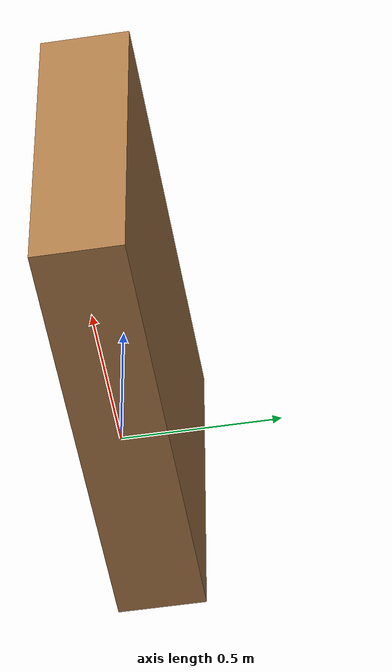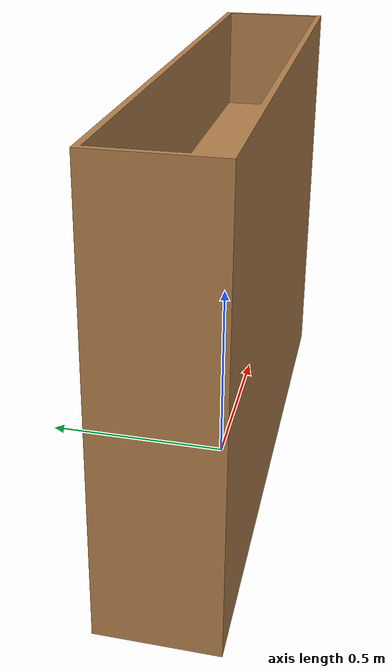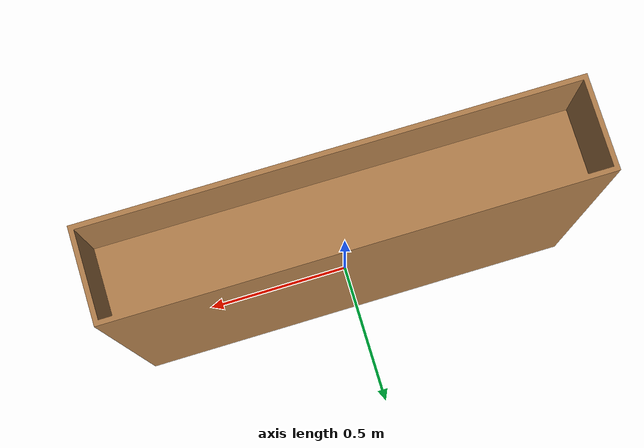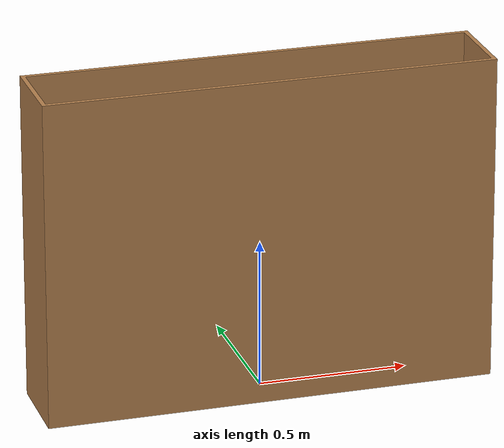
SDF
<sdf version='1.7'>
  <model name='Officedesk_F'>
    <link name='Officedesk_F'>
      <inertial>
        <pose>0 0 0.43189 0 -0 0</pose>
        <mass>371.48</mass>
        <inertia>
          <ixx>27.128</ixx>
          <ixy>-2.1983e-18</ixy>
          <ixz>-8.0767e-15</ixz>
          <iyy>94.826</iyy>
          <iyz>-7.3514e-16</iyz>
          <izz>73.198</izz>
        </inertia>
      </inertial>
      <collision name='Officedesk_F_collision'>
        <pose>0 0 0 0 -0 0</pose>
        <geometry>
          <mesh>
            <scale>1 1 1</scale>
            <uri>model://Officedesk_F/meshes/Officedesk_F.STL</uri>
          </mesh>
        </geometry>
      </collision>
      <visual name='Officedesk_F_visual'>
        <pose>0 0 0 0 -0 0</pose>
        <geometry>
          <mesh>
            <scale>1 1 1</scale>
            <uri>model://Officedesk_F/meshes/Officedesk_F.STL</uri>
          </mesh>
        </geometry>
        <material>
          <script>
            <uri>file://media/materials/scripts/gazebo.material</uri>
            <name>Gazebo/Wood</name>
          </script>
        </material>
      </visual>
    </link>
  </model>
</sdf>
